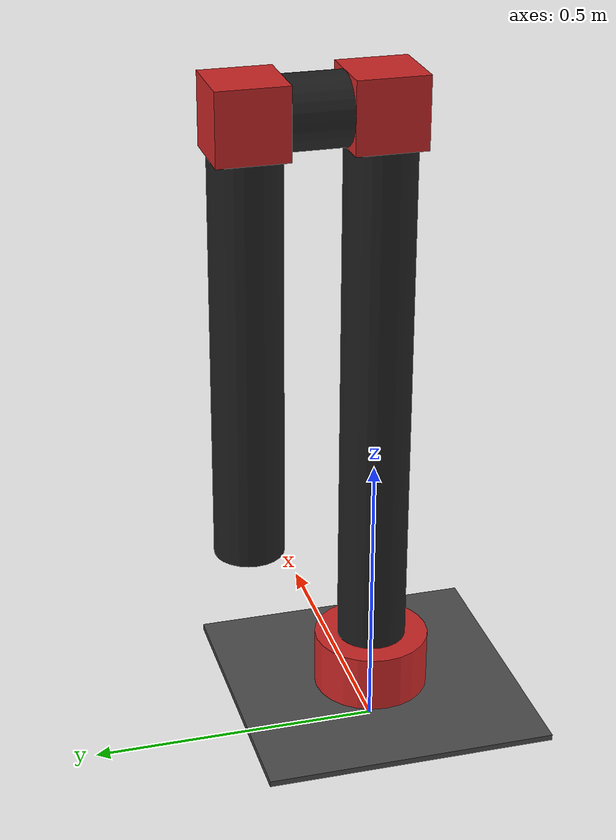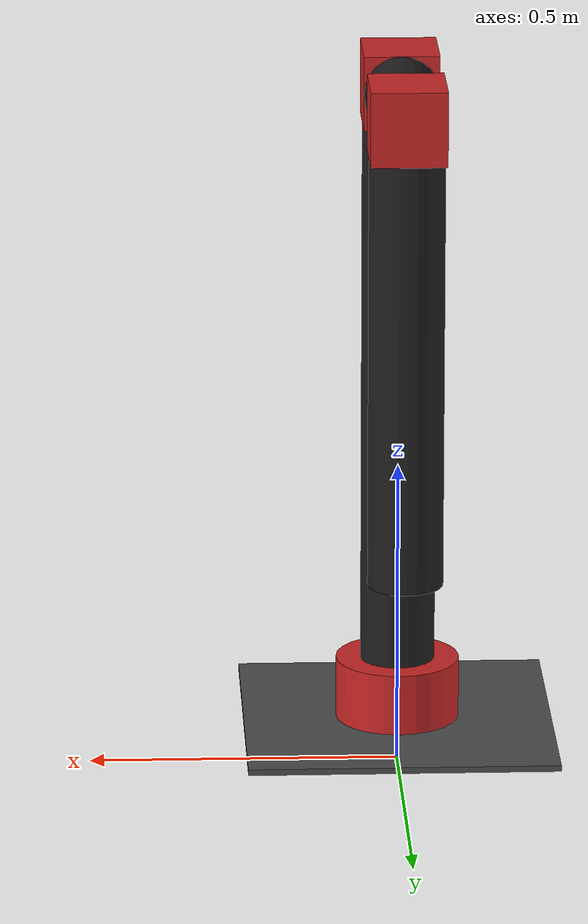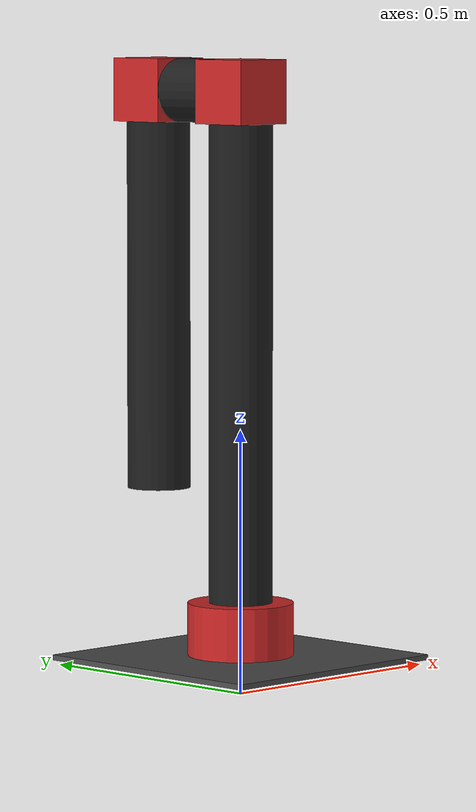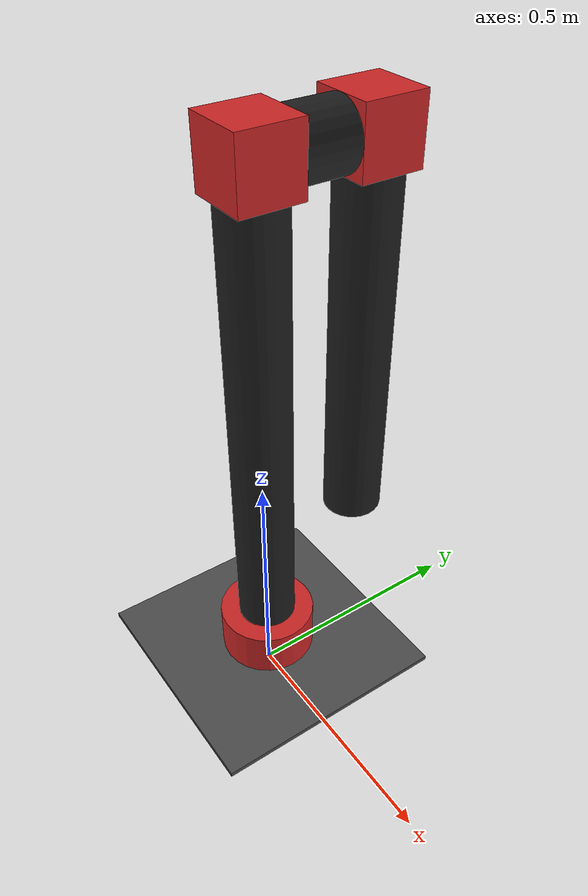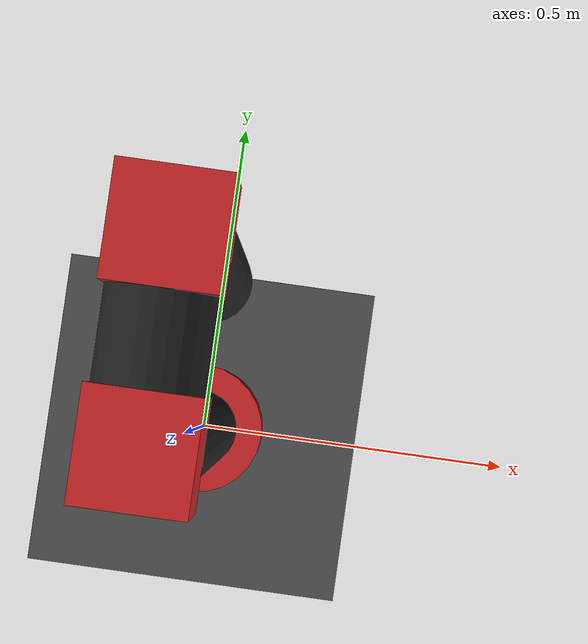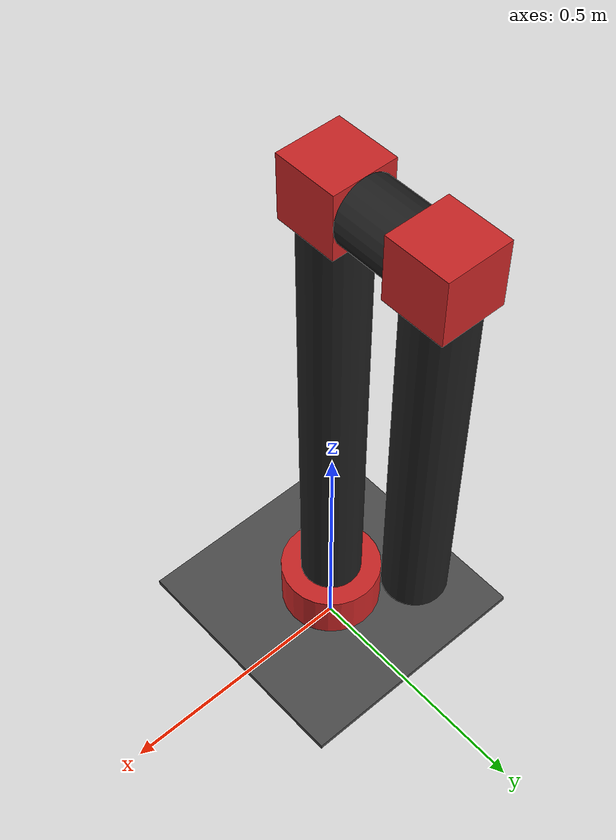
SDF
<?xml version='1.0'?>
<sdf version='1.7'>
  <model name='PoseTest'>
    <link name='base'>
      <inertial>
        <mass>123.399</mass>
        <inertia>
          <ixx>8.44047</ixx>
          <ixy>0</ixy>
          <ixz>0</ixz>
          <iyy>8.44047</iyy>
          <iyz>0</iyz>
          <izz>0.222118</izz>
        </inertia>
        <pose>0 0 0 0 -0 0</pose>
      </inertial>
      <self_collide>0</self_collide>
      <enable_wind>0</enable_wind>
      <kinematic>0</kinematic>
      <pose>0 0 0.125 0 -0 0</pose>
      <gravity>1</gravity>
      <visual name='visual_1'>
        <geometry>
          <cylinder>
            <radius>0.06</radius>
            <length>0.9</length>
          </cylinder>
        </geometry>
        <material>
          <script>
            <name>Gazebo/FlatBlack</name>
            <uri>file://media/materials/scripts/gazebo.material</uri>
          </script>
          <shader type='pixel'>
            <normal_map>__default__</normal_map>
          </shader>
          <ambient>0.1 0.1 0.1 1</ambient>
          <diffuse>0.1 0.1 0.1 1</diffuse>
          <specular>0.01 0.01 0.01 1</specular>
          <emissive>0 0 0 1</emissive>
        </material>
        <pose>0 0 0.5 0 -0 0</pose>
        <transparency>0</transparency>
        <cast_shadows>1</cast_shadows>
      </visual>
      <visual name='visual'>
        <geometry>
          <cylinder>
            <radius>0.1</radius>
            <length>0.1</length>
          </cylinder>
        </geometry>
        <material>
          <script>
            <name>Gazebo/RedBright</name>
            <uri>file://media/materials/scripts/gazebo.material</uri>
          </script>
          <shader type='pixel'>
            <normal_map>__default__</normal_map>
          </shader>
          <ambient>0.87 0.26 0.07 1</ambient>
          <diffuse>0.87 0.26 0.07 1</diffuse>
          <specular>0.87 0.26 0.07 1</specular>
          <emissive>0 0 0 1</emissive>
        </material>
        <pose>0 0 0 0 -0 0</pose>
        <transparency>0</transparency>
        <cast_shadows>1</cast_shadows>
      </visual>
      <visual name='visual_2'>
        <geometry>
          <box>
            <size>0.5 0.5 0.01</size>
          </box>
        </geometry>
        <material>
          <script>
            <name>Gazebo/DarkGrey</name>
            <uri>file://media/materials/scripts/gazebo.material</uri>
          </script>
          <shader type='pixel'>
            <normal_map>__default__</normal_map>
          </shader>
          <ambient>0.175 0.175 0.175 1</ambient>
          <diffuse>0.175 0.175 0.175 1</diffuse>
          <specular>0.175 0.175 0.175 1</specular>
          <emissive>0 0 0 1</emissive>
        </material>
        <pose>0 0 -0.055 0 -0 0</pose>
        <transparency>0</transparency>
        <cast_shadows>1</cast_shadows>
      </visual>
      <collision name='collision_1'>
        <laser_retro>0</laser_retro>
        <max_contacts>10</max_contacts>
        <pose>0 0 0.5 0 -0 0</pose>
        <geometry>
          <cylinder>
            <radius>0.06</radius>
            <length>0.9</length>
          </cylinder>
        </geometry>
        <surface>
          <friction>
            <ode>
              <mu>1</mu>
              <mu2>1</mu2>
              <fdir1>0 0 0</fdir1>
              <slip1>0</slip1>
              <slip2>0</slip2>
            </ode>
            <torsional>
              <coefficient>1</coefficient>
              <patch_radius>0</patch_radius>
              <surface_radius>0</surface_radius>
              <use_patch_radius>1</use_patch_radius>
              <ode>
                <slip>0</slip>
              </ode>
            </torsional>
          </friction>
          <bounce>
            <restitution_coefficient>0</restitution_coefficient>
            <threshold>1e+06</threshold>
          </bounce>
          <contact>
            <collide_without_contact>0</collide_without_contact>
            <collide_without_contact_bitmask>1</collide_without_contact_bitmask>
            <collide_bitmask>1</collide_bitmask>
            <ode>
              <soft_cfm>0</soft_cfm>
              <soft_erp>0.2</soft_erp>
              <kp>1e+13</kp>
              <kd>1</kd>
              <max_vel>0.01</max_vel>
              <min_depth>0</min_depth>
            </ode>
            <bullet>
              <split_impulse>1</split_impulse>
              <split_impulse_penetration_threshold>-0.01</split_impulse_penetration_threshold>
              <soft_cfm>0</soft_cfm>
              <soft_erp>0.2</soft_erp>
              <kp>1e+13</kp>
              <kd>1</kd>
            </bullet>
          </contact>
        </surface>
      </collision>
      <collision name='collision_2'>
        <laser_retro>0</laser_retro>
        <max_contacts>10</max_contacts>
        <pose>0 0 -0.055 0 -0 0</pose>
        <geometry>
          <box>
            <size>0.5 0.5 0.01</size>
          </box>
        </geometry>
        <surface>
          <friction>
            <ode>
              <mu>1</mu>
              <mu2>1</mu2>
              <fdir1>0 0 0</fdir1>
              <slip1>0</slip1>
              <slip2>0</slip2>
            </ode>
            <torsional>
              <coefficient>1</coefficient>
              <patch_radius>0</patch_radius>
              <surface_radius>0</surface_radius>
              <use_patch_radius>1</use_patch_radius>
              <ode>
                <slip>0</slip>
              </ode>
            </torsional>
          </friction>
          <bounce>
            <restitution_coefficient>0</restitution_coefficient>
            <threshold>1e+06</threshold>
          </bounce>
          <contact>
            <collide_without_contact>0</collide_without_contact>
            <collide_without_contact_bitmask>1</collide_without_contact_bitmask>
            <collide_bitmask>1</collide_bitmask>
            <ode>
              <soft_cfm>0</soft_cfm>
              <soft_erp>0.2</soft_erp>
              <kp>1e+13</kp>
              <kd>1</kd>
              <max_vel>0.01</max_vel>
              <min_depth>0</min_depth>
            </ode>
            <bullet>
              <split_impulse>1</split_impulse>
              <split_impulse_penetration_threshold>-0.01</split_impulse_penetration_threshold>
              <soft_cfm>0</soft_cfm>
              <soft_erp>0.2</soft_erp>
              <kp>1e+13</kp>
              <kd>1</kd>
            </bullet>
          </contact>
        </surface>
      </collision>
      <collision name='collision'>
        <laser_retro>0</laser_retro>
        <max_contacts>10</max_contacts>
        <pose>0 0 0 0 -0 0</pose>
        <geometry>
          <cylinder>
            <radius>0.1</radius>
            <length>0.1</length>
          </cylinder>
        </geometry>
        <surface>
          <friction>
            <ode>
              <mu>1</mu>
              <mu2>1</mu2>
              <fdir1>0 0 0</fdir1>
              <slip1>0</slip1>
              <slip2>0</slip2>
            </ode>
            <torsional>
              <coefficient>1</coefficient>
              <patch_radius>0</patch_radius>
              <surface_radius>0</surface_radius>
              <use_patch_radius>1</use_patch_radius>
              <ode>
                <slip>0</slip>
              </ode>
            </torsional>
          </friction>
          <bounce>
            <restitution_coefficient>0</restitution_coefficient>
            <threshold>1e+06</threshold>
          </bounce>
          <contact>
            <collide_without_contact>0</collide_without_contact>
            <collide_without_contact_bitmask>1</collide_without_contact_bitmask>
            <collide_bitmask>1</collide_bitmask>
            <ode>
              <soft_cfm>0</soft_cfm>
              <soft_erp>0.2</soft_erp>
              <kp>1e+13</kp>
              <kd>1</kd>
              <max_vel>0.01</max_vel>
              <min_depth>0</min_depth>
            </ode>
            <bullet>
              <split_impulse>1</split_impulse>
              <split_impulse_penetration_threshold>-0.01</split_impulse_penetration_threshold>
              <soft_cfm>0</soft_cfm>
              <soft_erp>0.2</soft_erp>
              <kp>1e+13</kp>
              <kd>1</kd>
            </bullet>
          </contact>
        </surface>
      </collision>
    </link>
    <link name='bullet_spawner'>
      <pose>-0.000279 0.22008 0.21715 2e-06 2e-06 -2.8e-05</pose>
      <gravity>0</gravity>
      <self_collide>0</self_collide>
      <kinematic>0</kinematic>
      <enable_wind>0</enable_wind>
      <inertial>
        <pose>0 0 0 0 -0 0</pose>
        <inertia>
          <ixx>1</ixx>
          <ixy>0</ixy>
          <ixz>0</ixz>
          <iyy>1</iyy>
          <iyz>0</iyz>
          <izz>1</izz>
        </inertia>
        <mass>1</mass>
      </inertial>
      <visual name='visual'>
        <pose>0 0 0 0 -0 0</pose>
        <geometry>
          <sphere>
            <radius>0.08</radius>
          </sphere>
        </geometry>
        <material>
          <lighting>1</lighting>
          <shader type='pixel'/>
        </material>
        <transparency>1</transparency>
        <cast_shadows>0</cast_shadows>
      </visual>
    </link>
    <link name='pitch_1'>
      <inertial>
        <mass>26.041</mass>
        <inertia>
          <ixx>0.0624984</ixx>
          <ixy>0</ixy>
          <ixz>0</ixz>
          <iyy>0.0624984</iyy>
          <iyz>0</iyz>
          <izz>0.0624984</izz>
        </inertia>
        <pose>0 0 0 0 -0 0</pose>
      </inertial>
      <pose>0 0.22 1.135 0 -0 0</pose>
      <self_collide>0</self_collide>
      <enable_wind>0</enable_wind>
      <kinematic>0</kinematic>
      <gravity>1</gravity>
      <visual name='visual_1'>
        <geometry>
          <cylinder>
            <radius>0.06</radius>
            <length>0.7</length>
          </cylinder>
        </geometry>
        <material>
          <lighting>1</lighting>
          <script>
            <uri>file://media/materials/scripts/gazebo.material</uri>
            <name>Gazebo/FlatBlack</name>
          </script>
          <shader type='pixel'>
            <normal_map>__default__</normal_map>
          </shader>
        </material>
        <pose>0 0 -0.41 0 -0 0</pose>
        <transparency>0</transparency>
        <cast_shadows>1</cast_shadows>
      </visual>
      <visual name='visual'>
        <pose>0 0 0 0 -0 0</pose>
        <geometry>
          <box>
            <size>0.12 0.12 0.12</size>
          </box>
        </geometry>
        <material>
          <script>
            <name>Gazebo/RedBright</name>
            <uri>file://media/materials/scripts/gazebo.material</uri>
          </script>
          <shader type='pixel'>
            <normal_map>__default__</normal_map>
          </shader>
        </material>
        <transparency>0</transparency>
        <cast_shadows>1</cast_shadows>
      </visual>
      <collision name='collision'>
        <laser_retro>0</laser_retro>
        <max_contacts>10</max_contacts>
        <pose>0 0 0 0 -0 0</pose>
        <geometry>
          <box>
            <size>0.12 0.12 0.12</size>
          </box>
        </geometry>
        <surface>
          <friction>
            <ode>
              <mu>1</mu>
              <mu2>1</mu2>
              <fdir1>0 0 0</fdir1>
              <slip1>0</slip1>
              <slip2>0</slip2>
            </ode>
            <torsional>
              <coefficient>1</coefficient>
              <patch_radius>0</patch_radius>
              <surface_radius>0</surface_radius>
              <use_patch_radius>1</use_patch_radius>
              <ode>
                <slip>0</slip>
              </ode>
            </torsional>
          </friction>
          <bounce>
            <restitution_coefficient>0</restitution_coefficient>
            <threshold>1e+06</threshold>
          </bounce>
          <contact>
            <collide_without_contact>0</collide_without_contact>
            <collide_without_contact_bitmask>1</collide_without_contact_bitmask>
            <collide_bitmask>1</collide_bitmask>
            <ode>
              <soft_cfm>0</soft_cfm>
              <soft_erp>0.2</soft_erp>
              <kp>1e+13</kp>
              <kd>1</kd>
              <max_vel>0.01</max_vel>
              <min_depth>0</min_depth>
            </ode>
            <bullet>
              <split_impulse>1</split_impulse>
              <split_impulse_penetration_threshold>-0.01</split_impulse_penetration_threshold>
              <soft_cfm>0</soft_cfm>
              <soft_erp>0.2</soft_erp>
              <kp>1e+13</kp>
              <kd>1</kd>
            </bullet>
          </contact>
        </surface>
      </collision>
      <collision name='collision_1'>
        <laser_retro>0</laser_retro>
        <max_contacts>10</max_contacts>
        <pose>0 0 -0.41 0 -0 0</pose>
        <geometry>
          <cylinder>
            <radius>0.06</radius>
            <length>0.7</length>
          </cylinder>
        </geometry>
        <surface>
          <friction>
            <ode>
              <mu>1</mu>
              <mu2>1</mu2>
              <fdir1>0 0 0</fdir1>
              <slip1>0</slip1>
              <slip2>0</slip2>
            </ode>
            <torsional>
              <coefficient>1</coefficient>
              <patch_radius>0</patch_radius>
              <surface_radius>0</surface_radius>
              <use_patch_radius>1</use_patch_radius>
              <ode>
                <slip>0</slip>
              </ode>
            </torsional>
          </friction>
          <bounce>
            <restitution_coefficient>0</restitution_coefficient>
            <threshold>1e+06</threshold>
          </bounce>
          <contact>
            <collide_without_contact>0</collide_without_contact>
            <collide_without_contact_bitmask>1</collide_without_contact_bitmask>
            <collide_bitmask>1</collide_bitmask>
            <ode>
              <soft_cfm>0</soft_cfm>
              <soft_erp>0.2</soft_erp>
              <kp>1e+13</kp>
              <kd>1</kd>
              <max_vel>0.01</max_vel>
              <min_depth>0</min_depth>
            </ode>
            <bullet>
              <split_impulse>1</split_impulse>
              <split_impulse_penetration_threshold>-0.01</split_impulse_penetration_threshold>
              <soft_cfm>0</soft_cfm>
              <soft_erp>0.2</soft_erp>
              <kp>1e+13</kp>
              <kd>1</kd>
            </bullet>
          </contact>
        </surface>
      </collision>
    </link>
    <link name='yaw_1'>
      <inertial>
        <mass>7.71923</mass>
        <inertia>
          <ixx>0.01338</ixx>
          <ixy>0</ixy>
          <ixz>0</ixz>
          <iyy>0.01338</iyy>
          <iyz>0</iyz>
          <izz>0.0138946</izz>
        </inertia>
        <pose>0 0 0 0 -0 0</pose>
      </inertial>
      <pose>0 0 1.135 0 -0 0</pose>
      <self_collide>0</self_collide>
      <enable_wind>0</enable_wind>
      <kinematic>0</kinematic>
      <gravity>1</gravity>
      <visual name='visual_2'>
        <geometry>
          <cylinder>
            <radius>0.06</radius>
            <length>0.1</length>
          </cylinder>
        </geometry>
        <material>
          <script>
            <name>Gazebo/FlatBlack</name>
            <uri>file://media/materials/scripts/gazebo.material</uri>
          </script>
          <shader type='pixel'>
            <normal_map>__default__</normal_map>
          </shader>
          <ambient>0.1 0.1 0.1 1</ambient>
          <diffuse>0.1 0.1 0.1 1</diffuse>
          <specular>0.01 0.01 0.01 1</specular>
          <emissive>0 0 0 1</emissive>
        </material>
        <pose>0 0.11 0 1.57 -0 0</pose>
        <transparency>0</transparency>
        <cast_shadows>1</cast_shadows>
      </visual>
      <visual name='visual'>
        <geometry>
          <box>
            <size>0.12 0.12 0.12</size>
          </box>
        </geometry>
        <material>
          <script>
            <name>Gazebo/RedBright</name>
            <uri>file://media/materials/scripts/gazebo.material</uri>
          </script>
          <shader type='pixel'>
            <normal_map>__default__</normal_map>
          </shader>
          <ambient>0.87 0.26 0.07 1</ambient>
          <diffuse>0.87 0.26 0.07 1</diffuse>
          <specular>0.87 0.26 0.07 1</specular>
          <emissive>0 0 0 1</emissive>
        </material>
        <pose>0 0 0 0 -0 0</pose>
        <transparency>0</transparency>
        <cast_shadows>1</cast_shadows>
      </visual>
      <collision name='collision'>
        <laser_retro>0</laser_retro>
        <max_contacts>10</max_contacts>
        <pose>0 0 0 0 -0 0</pose>
        <geometry>
          <box>
            <size>0.12 0.12 0.12</size>
          </box>
        </geometry>
        <surface>
          <friction>
            <ode>
              <mu>1</mu>
              <mu2>1</mu2>
              <fdir1>0 0 0</fdir1>
              <slip1>0</slip1>
              <slip2>0</slip2>
            </ode>
            <torsional>
              <coefficient>1</coefficient>
              <patch_radius>0</patch_radius>
              <surface_radius>0</surface_radius>
              <use_patch_radius>1</use_patch_radius>
              <ode>
                <slip>0</slip>
              </ode>
            </torsional>
          </friction>
          <bounce>
            <restitution_coefficient>0</restitution_coefficient>
            <threshold>1e+06</threshold>
          </bounce>
          <contact>
            <collide_without_contact>0</collide_without_contact>
            <collide_without_contact_bitmask>1</collide_without_contact_bitmask>
            <collide_bitmask>1</collide_bitmask>
            <ode>
              <soft_cfm>0</soft_cfm>
              <soft_erp>0.2</soft_erp>
              <kp>1e+13</kp>
              <kd>1</kd>
              <max_vel>0.01</max_vel>
              <min_depth>0</min_depth>
            </ode>
            <bullet>
              <split_impulse>1</split_impulse>
              <split_impulse_penetration_threshold>-0.01</split_impulse_penetration_threshold>
              <soft_cfm>0</soft_cfm>
              <soft_erp>0.2</soft_erp>
              <kp>1e+13</kp>
              <kd>1</kd>
            </bullet>
          </contact>
        </surface>
      </collision>
      <collision name='collision_2'>
        <laser_retro>0</laser_retro>
        <max_contacts>10</max_contacts>
        <pose>0 0.11 0 1.57 -0 0</pose>
        <geometry>
          <cylinder>
            <radius>0.06</radius>
            <length>0.1</length>
          </cylinder>
        </geometry>
        <surface>
          <friction>
            <ode>
              <mu>1</mu>
              <mu2>1</mu2>
              <fdir1>0 0 0</fdir1>
              <slip1>0</slip1>
              <slip2>0</slip2>
            </ode>
            <torsional>
              <coefficient>1</coefficient>
              <patch_radius>0</patch_radius>
              <surface_radius>0</surface_radius>
              <use_patch_radius>1</use_patch_radius>
              <ode>
                <slip>0</slip>
              </ode>
            </torsional>
          </friction>
          <bounce>
            <restitution_coefficient>0</restitution_coefficient>
            <threshold>1e+06</threshold>
          </bounce>
          <contact>
            <collide_without_contact>0</collide_without_contact>
            <collide_without_contact_bitmask>1</collide_without_contact_bitmask>
            <collide_bitmask>1</collide_bitmask>
            <ode>
              <soft_cfm>0</soft_cfm>
              <soft_erp>0.2</soft_erp>
              <kp>1e+13</kp>
              <kd>1</kd>
              <max_vel>0.01</max_vel>
              <min_depth>0</min_depth>
            </ode>
            <bullet>
              <split_impulse>1</split_impulse>
              <split_impulse_penetration_threshold>-0.01</split_impulse_penetration_threshold>
              <soft_cfm>0</soft_cfm>
              <soft_erp>0.2</soft_erp>
              <kp>1e+13</kp>
              <kd>1</kd>
            </bullet>
          </contact>
        </surface>
      </collision>
    </link>
    <joint name='base_yaw_1' type='revolute'>
      <parent>base</parent>
      <child>yaw_1</child>
      <pose>0 0 0 0 -0 0</pose>
      <axis>
        <xyz>0 0 -1</xyz>
        <limit>
          <lower>-1.79769e+308</lower>
          <upper>1.79769e+308</upper>
          <effort>-1</effort>
          <velocity>-1</velocity>
        </limit>
        <dynamics>
          <spring_reference>0</spring_reference>
          <spring_stiffness>0</spring_stiffness>
          <damping>0</damping>
          <friction>0</friction>
        </dynamics>
      </axis>
      <physics>
        <ode>
          <limit>
            <cfm>0</cfm>
            <erp>0.2</erp>
          </limit>
          <suspension>
            <cfm>0</cfm>
            <erp>0.2</erp>
          </suspension>
        </ode>
      </physics>
    </joint>
    <joint name='pitch_1_bullet_spawner' type='fixed'>
      <parent>pitch_1</parent>
      <child>bullet_spawner</child>
      <pose>0 0 0 0 -0 0</pose>
      <physics>
        <ode>
          <limit>
            <cfm>0</cfm>
            <erp>0.2</erp>
          </limit>
          <suspension>
            <cfm>0</cfm>
            <erp>0.2</erp>
          </suspension>
        </ode>
      </physics>
    </joint>
    <joint name='yaw_1_pitch_1' type='revolute'>
      <parent>yaw_1</parent>
      <child>pitch_1</child>
      <pose>0 0 0 0 -0 0</pose>
      <axis>
        <xyz>-0 -1 -0</xyz>
        <limit>
          <lower>-1.79769e+308</lower>
          <upper>1.79769e+308</upper>
          <effort>-1</effort>
          <velocity>-1</velocity>
        </limit>
        <dynamics>
          <spring_reference>0</spring_reference>
          <spring_stiffness>0</spring_stiffness>
          <damping>0</damping>
          <friction>0</friction>
        </dynamics>
      </axis>
      <physics>
        <ode>
          <limit>
            <cfm>0</cfm>
            <erp>0.2</erp>
          </limit>
          <suspension>
            <cfm>0</cfm>
            <erp>0.2</erp>
          </suspension>
        </ode>
      </physics>
    </joint>
    <static>0</static>
    <allow_auto_disable>1</allow_auto_disable>
    <plugin name='PoseTestPlugin' filename='libPoseTestPlugin.so'>
      <p_term>1</p_term>
      <i_term>0</i_term>
      <d_term>4</d_term>
    </plugin>
  </model>
</sdf>
